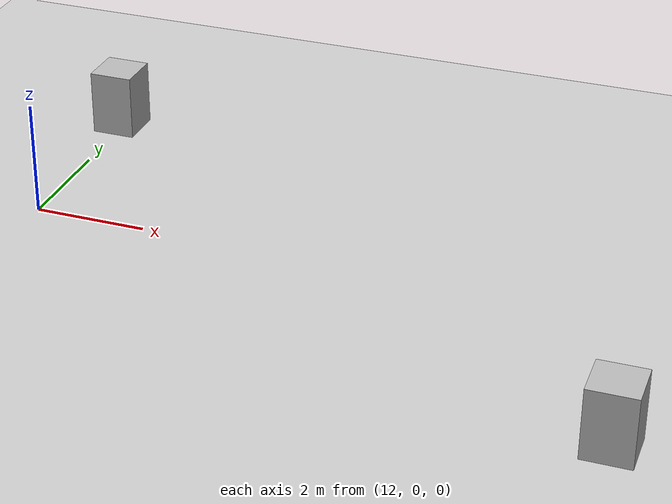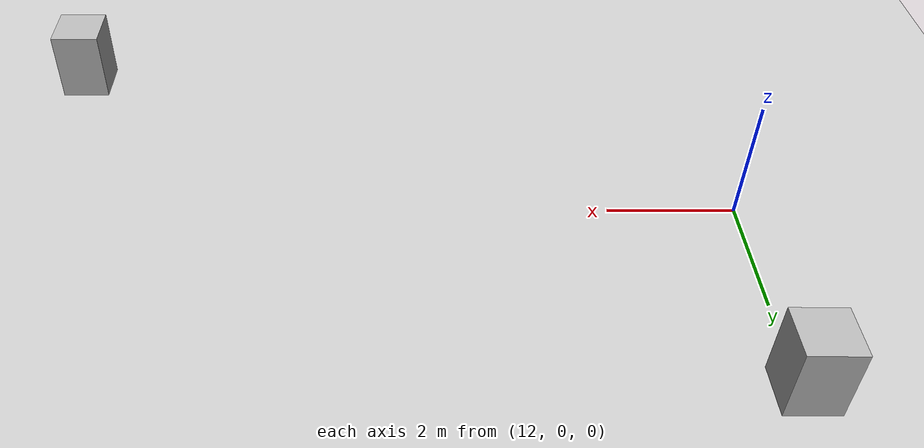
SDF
<?xml version="1.0"?>
<sdf version="1.6">
  <world name="v2-04g-r3-cruise-s5023">
    <gravity>0 0 -9.81</gravity>
    <physics name="v2_deterministic" type="ode">
      <max_step_size>0.002</max_step_size>
      <real_time_update_rate>500</real_time_update_rate>
    </physics>
    <include>
      <uri>model://sun</uri>
    </include>
    <include>
      <uri>model://ground_plane</uri>
    </include>
    <model name="cruise-left">
      <static>true</static>
      <pose>11.952269788 3.513763246 0.600000000 0 0 -0.002139973</pose>
      <link name="link">
        <collision name="collision">
          <geometry>
            <box>
              <size>0.800000 0.800000 1.200000</size>
            </box>
          </geometry>
        </collision>
        <visual name="visual">
          <geometry>
            <box>
              <size>0.800000 0.800000 1.200000</size>
            </box>
          </geometry>
        </visual>
      </link>
    </model>
    <model name="cruise-right">
      <static>true</static>
      <pose>22.956378634 -3.464463397 0.600000000 0 0 0.009992184</pose>
      <link name="link">
        <collision name="collision">
          <geometry>
            <box>
              <size>0.800000 0.800000 1.200000</size>
            </box>
          </geometry>
        </collision>
        <visual name="visual">
          <geometry>
            <box>
              <size>0.800000 0.800000 1.200000</size>
            </box>
          </geometry>
        </visual>
      </link>
    </model>
  </world>
</sdf>
